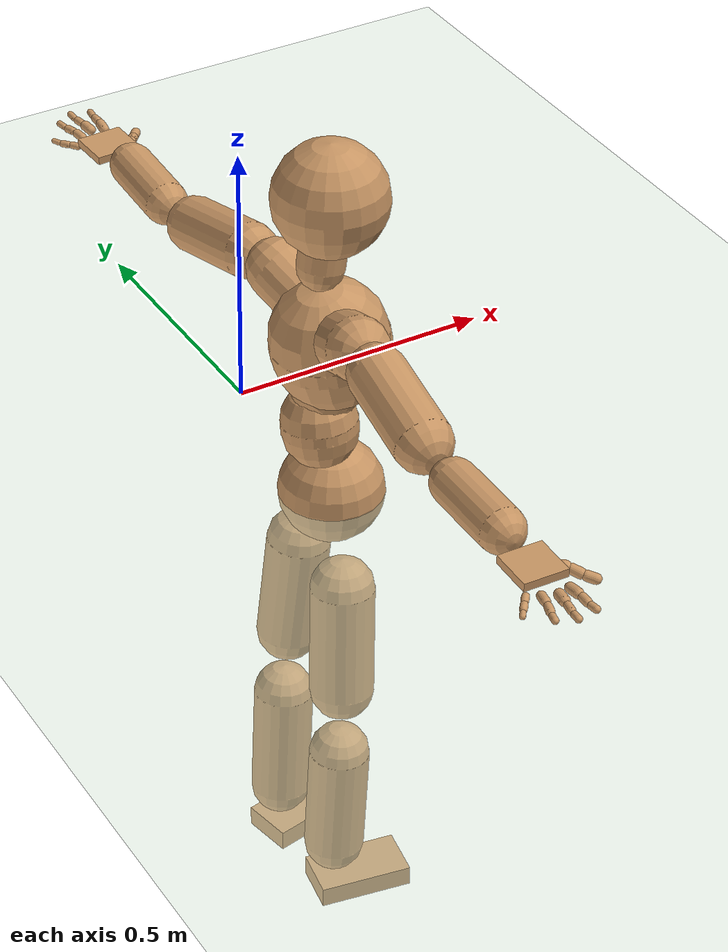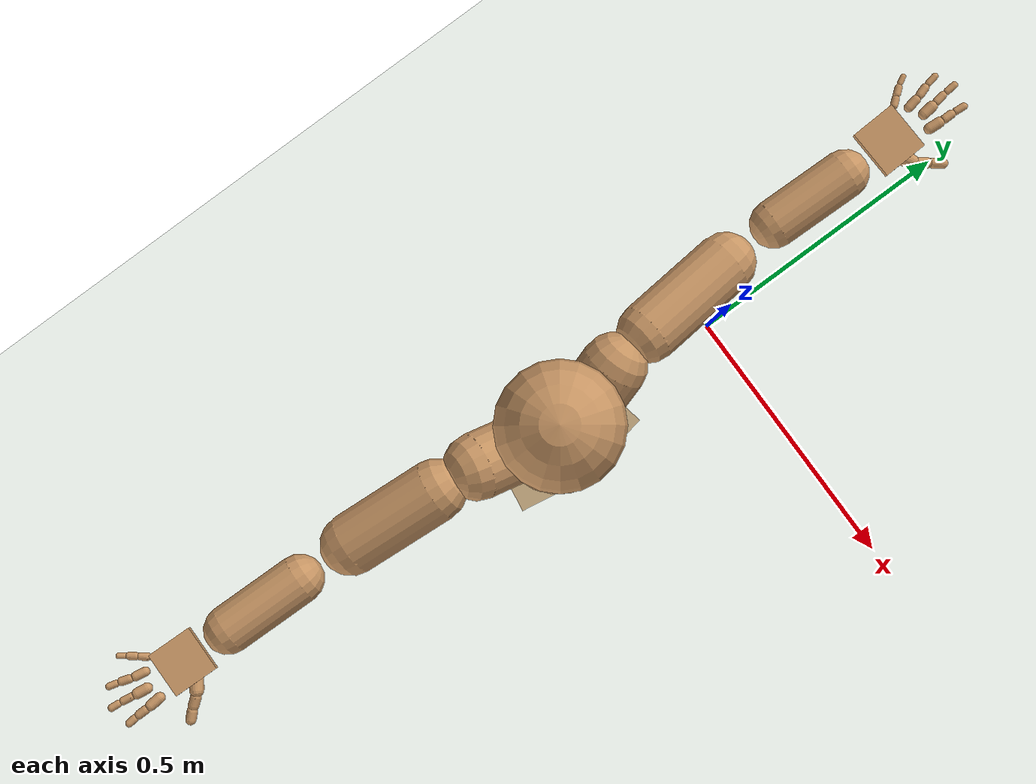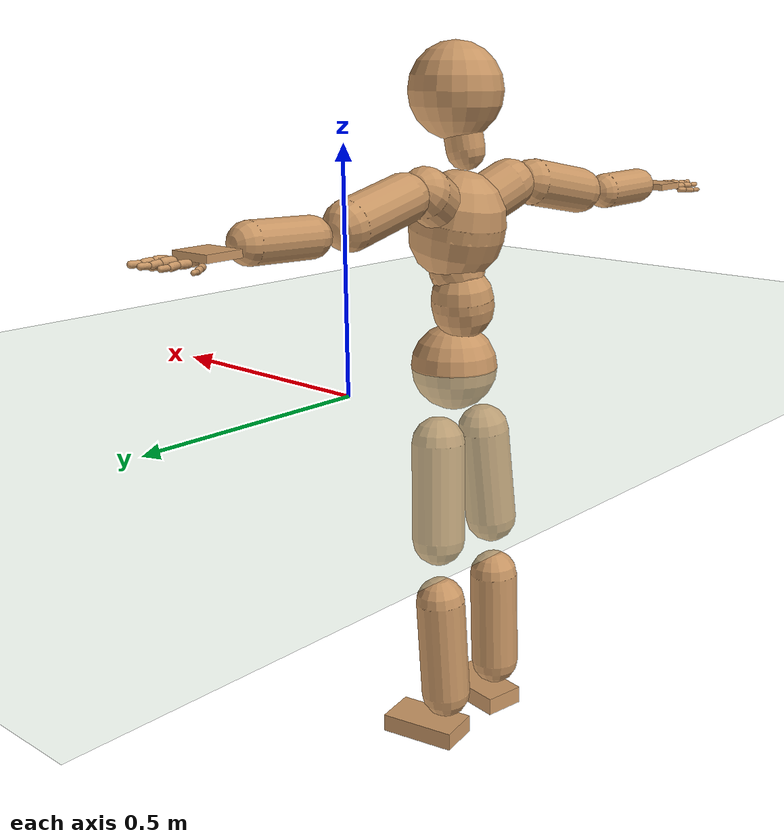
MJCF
<mujoco model="humanoid">
  <compiler coordinate="local" angle="radian"/>
  <default>
    <joint damping="0.0" armature="0.01" stiffness="0.0" limited="true"/>
    <geom conaffinity="1" condim="3" contype="7" margin="0.001" rgba="0.8 0.6 .4 1"/>
  </default>
  <asset>
    <texture type="skybox" builtin="gradient" rgb1=".4 .5 .6" rgb2="0 0 0" width="100" height="100"/>
    <texture builtin="flat" height="1278" mark="cross" markrgb="1 1 1" name="texgeom" random="0.01" rgb1="0.8 0.6 0.4" rgb2="0.8 0.6 0.4" type="cube" width="127"/>
    <texture builtin="checker" height="100" name="texplane" rgb1="0 0 0" rgb2="0.8 0.8 0.8" type="2d" width="100"/>
    <material name="MatPlane" reflectance="0.5" shininess="1" specular="1" texrepeat="60 60" texture="texplane"/>
    <material name="geom" texture="texgeom" texuniform="true"/>
  </asset>
  <worldbody>
    <light cutoff="100" diffuse="1 1 1" dir="-0 0 -1.3" directional="true" exponent="1" pos="0 0 1.3" specular=".1 .1 .1"/>
    <geom conaffinity="1" condim="3" name="floor" pos="0 0 0" rgba="0.8 0.9 0.8 1" size="100 100 .2" type="plane" material="MatPlane"/>
    <body name="Pelvis" pos="0.0006 -0.3273 -0.0001">
      <freejoint name="Pelvis"/>
      <geom type="sphere" contype="1" conaffinity="1" density="500" size="0.0959" pos="0.0000 0.0000 0.0000" name="Pelvis"/>
      <body name="L_Hip" pos="-0.0169 0.0726 -0.0832">
        <joint name="L_Hip_x" type="hinge" pos="0 0 0" axis="1 0 0" stiffness="800" damping="80" armature="0.02" range="-180.0000 180.0000"/>
        <joint name="L_Hip_y" type="hinge" pos="0 0 0" axis="0 1 0" stiffness="800" damping="80" armature="0.02" range="-180.0000 180.0000"/>
        <joint name="L_Hip_z" type="hinge" pos="0 0 0" axis="0 0 1" stiffness="800" damping="80" armature="0.02" range="-180.0000 180.0000"/>
        <geom type="capsule" contype="1" conaffinity="1" density="500" fromto="-0.0046 0.0052 -0.0724 -0.0184 0.0210 -0.2898" size="0.0588" name="L_Hip"/>
        <body name="L_Knee" pos="-0.023 0.0262 -0.3622">
          <joint name="L_Knee_x" type="hinge" pos="0 0 0" axis="1 0 0" stiffness="800" damping="80" armature="0.02" range="-180.0000 180.0000"/>
          <joint name="L_Knee_y" type="hinge" pos="0 0 0" axis="0 1 0" stiffness="800" damping="80" armature="0.02" range="-180.0000 180.0000"/>
          <joint name="L_Knee_z" type="hinge" pos="0 0 0" axis="0 0 1" stiffness="800" damping="80" armature="0.02" range="-180.0000 180.0000"/>
          <geom type="capsule" contype="1" conaffinity="1" density="500" fromto="-0.0036 -0.0019 -0.0755 -0.0146 -0.0075 -0.3019" size="0.0554" name="L_Knee"/>
          <body name="L_Ankle" pos="-0.0182 -0.0093 -0.3774">
            <joint name="L_Ankle_x" type="hinge" pos="0 0 0" axis="1 0 0" stiffness="800" damping="80" armature="0.02" range="-180.0000 180.0000"/>
            <joint name="L_Ankle_y" type="hinge" pos="0 0 0" axis="0 1 0" stiffness="800" damping="80" armature="0.02" range="-180.0000 180.0000"/>
            <joint name="L_Ankle_z" type="hinge" pos="0 0 0" axis="0 0 1" stiffness="800" damping="80" armature="0.02" range="-180.0000 180.0000"/>
            <geom type="box" contype="1" conaffinity="1" density="500" pos="0.0544 0.0106 -0.0219" size="0.0875 0.0477 0.0204" quat="0.9954 0.0000 0.0000 0.0961" name="L_Ankle"/>
            <body name="L_Toe" pos="0.1088 0.0212 -0.0437">
              <joint name="L_Toe_x" type="hinge" pos="0 0 0" axis="1 0 0" stiffness="500" damping="50" armature="0.02" range="-180.0000 180.0000"/>
              <joint name="L_Toe_y" type="hinge" pos="0 0 0" axis="0 1 0" stiffness="500" damping="50" armature="0.02" range="-180.0000 180.0000"/>
              <joint name="L_Toe_z" type="hinge" pos="0 0 0" axis="0 0 1" stiffness="500" damping="50" armature="0.02" range="-180.0000 180.0000"/>
              <geom type="box" contype="1" conaffinity="1" density="500" pos="0.0000 0.0000 0.0219" size="0.0009 0.0024 0.001" quat="0.9947 0.0000 0.0000 0.1030" name="L_Toe"/>
            </body>
          </body>
        </body>
      </body>
      <body name="R_Hip" pos="-0.018 -0.0719 -0.0898">
        <joint name="R_Hip_x" type="hinge" pos="0 0 0" axis="1 0 0" stiffness="800" damping="80" armature="0.02" range="-180.0000 180.0000"/>
        <joint name="R_Hip_y" type="hinge" pos="0 0 0" axis="0 1 0" stiffness="800" damping="80" armature="0.02" range="-180.0000 180.0000"/>
        <joint name="R_Hip_z" type="hinge" pos="0 0 0" axis="0 0 1" stiffness="800" damping="80" armature="0.02" range="-180.0000 180.0000"/>
        <geom type="capsule" contype="1" conaffinity="1" density="500" fromto="-0.0034 -0.0061 -0.0716 -0.0137 -0.0242 -0.2863" size="0.0586" name="R_Hip"/>
        <body name="R_Knee" pos="-0.0171 -0.0303 -0.3578">
          <joint name="R_Knee_x" type="hinge" pos="0 0 0" axis="1 0 0" stiffness="800" damping="80" armature="0.02" range="-180.0000 180.0000"/>
          <joint name="R_Knee_y" type="hinge" pos="0 0 0" axis="0 1 0" stiffness="800" damping="80" armature="0.02" range="-180.0000 180.0000"/>
          <joint name="R_Knee_z" type="hinge" pos="0 0 0" axis="0 0 1" stiffness="800" damping="80" armature="0.02" range="-180.0000 180.0000"/>
          <geom type="capsule" contype="1" conaffinity="1" density="500" fromto="-0.0028 0.0009 -0.0738 -0.0114 0.0036 -0.2951" size="0.0555" name="R_Knee"/>
          <body name="R_Ankle" pos="-0.0142 0.0045 -0.3689">
            <joint name="R_Ankle_x" type="hinge" pos="0 0 0" axis="1 0 0" stiffness="800" damping="80" armature="0.02" range="-180.0000 180.0000"/>
            <joint name="R_Ankle_y" type="hinge" pos="0 0 0" axis="0 1 0" stiffness="800" damping="80" armature="0.02" range="-180.0000 180.0000"/>
            <joint name="R_Ankle_z" type="hinge" pos="0 0 0" axis="0 0 1" stiffness="800" damping="80" armature="0.02" range="-180.0000 180.0000"/>
            <geom type="box" contype="1" conaffinity="1" density="500" pos="0.0512 -0.0084 -0.0235" size="0.0875 0.0477 0.0204" quat="0.9967 0.0000 0.0000 -0.0814" name="R_Ankle"/>
            <body name="R_Toe" pos="0.1024 -0.0168 -0.047">
              <joint name="R_Toe_x" type="hinge" pos="0 0 0" axis="1 0 0" stiffness="500" damping="50" armature="0.02" range="-180.0000 180.0000"/>
              <joint name="R_Toe_y" type="hinge" pos="0 0 0" axis="0 1 0" stiffness="500" damping="50" armature="0.02" range="-180.0000 180.0000"/>
              <joint name="R_Toe_z" type="hinge" pos="0 0 0" axis="0 0 1" stiffness="500" damping="50" armature="0.02" range="-180.0000 180.0000"/>
              <geom type="box" contype="1" conaffinity="1" density="500" pos="0.0000 0.0000 0.0235" size="0.0009 0.0024 0.001" quat="0.9975 0.0000 0.0000 -0.0705" name="R_Toe"/>
            </body>
          </body>
        </body>
      </body>
      <body name="Torso" pos="-0.0225 -0.0055 0.0943">
        <joint name="Torso_x" type="hinge" pos="0 0 0" axis="1 0 0" stiffness="1000" damping="100" armature="0.02" range="-180.0000 180.0000"/>
        <joint name="Torso_y" type="hinge" pos="0 0 0" axis="0 1 0" stiffness="1000" damping="100" armature="0.02" range="-180.0000 180.0000"/>
        <joint name="Torso_z" type="hinge" pos="0 0 0" axis="0 0 1" stiffness="1000" damping="100" armature="0.02" range="-180.0000 180.0000"/>
        <geom type="capsule" contype="1" conaffinity="1" density="500" fromto="-0.0021 0.0070 0.0610 -0.0014 0.0047 0.0407" size="0.0688" name="Torso"/>
        <body name="Spine" pos="-0.0035 0.0117 0.1017">
          <joint name="Spine_x" type="hinge" pos="0 0 0" axis="1 0 0" stiffness="1000" damping="100" armature="0.02" range="-180.0000 180.0000"/>
          <joint name="Spine_y" type="hinge" pos="0 0 0" axis="0 1 0" stiffness="1000" damping="100" armature="0.02" range="-180.0000 180.0000"/>
          <joint name="Spine_z" type="hinge" pos="0 0 0" axis="0 0 1" stiffness="1000" damping="100" armature="0.02" range="-180.0000 180.0000"/>
          <geom type="capsule" contype="1" conaffinity="1" density="500" fromto="0.0207 -0.0042 0.0253 0.0138 -0.0028 0.0168" size="0.0598" name="Spine"/>
          <body name="Chest" pos="0.0345 -0.007 0.0421">
            <joint name="Chest_x" type="hinge" pos="0 0 0" axis="1 0 0" stiffness="1000" damping="100" armature="0.02" range="-180.0000 180.0000"/>
            <joint name="Chest_y" type="hinge" pos="0 0 0" axis="0 1 0" stiffness="1000" damping="100" armature="0.02" range="-180.0000 180.0000"/>
            <joint name="Chest_z" type="hinge" pos="0 0 0" axis="0 0 1" stiffness="1000" damping="100" armature="0.02" range="-180.0000 180.0000"/>
            <geom type="capsule" contype="1" conaffinity="1" density="500" fromto="-0.0171 -0.0017 0.0861 -0.0114 -0.0011 0.0574" size="0.1051" name="Chest"/>
            <body name="Neck" pos="-0.041 -0.0059 0.2007">
              <joint name="Neck_x" type="hinge" pos="0 0 0" axis="1 0 0" stiffness="500" damping="50" armature="0.02" range="-180.0000 180.0000"/>
              <joint name="Neck_y" type="hinge" pos="0 0 0" axis="0 1 0" stiffness="500" damping="50" armature="0.02" range="-180.0000 180.0000"/>
              <joint name="Neck_z" type="hinge" pos="0 0 0" axis="0 0 1" stiffness="500" damping="50" armature="0.02" range="-180.0000 180.0000"/>
              <geom type="capsule" contype="1" conaffinity="1" density="500" fromto="0.0055 0.0018 0.0303 0.0220 0.0072 0.1213" size="0.0418" name="Neck"/>
              <body name="Head" pos="0.0275 0.0089 0.1516">
                <joint name="Head_x" type="hinge" pos="0 0 0" axis="1 0 0" stiffness="500" damping="50" armature="0.02" range="-180.0000 180.0000"/>
                <joint name="Head_y" type="hinge" pos="0 0 0" axis="0 1 0" stiffness="500" damping="50" armature="0.02" range="-180.0000 180.0000"/>
                <joint name="Head_z" type="hinge" pos="0 0 0" axis="0 0 1" stiffness="500" damping="50" armature="0.02" range="-180.0000 180.0000"/>
                <geom type="sphere" contype="1" conaffinity="1" density="500" size="0.1016" pos="0.0000 0.0000 0.0000" name="Head"/>
              </body>
            </body>
            <body name="L_Thorax" pos="-0.0186 0.0552 0.1172">
              <joint name="L_Thorax_x" type="hinge" pos="0 0 0" axis="1 0 0" stiffness="500" damping="50" armature="0.02" range="-180.0000 180.0000"/>
              <joint name="L_Thorax_y" type="hinge" pos="0 0 0" axis="0 1 0" stiffness="500" damping="50" armature="0.02" range="-180.0000 180.0000"/>
              <joint name="L_Thorax_z" type="hinge" pos="0 0 0" axis="0 0 1" stiffness="500" damping="50" armature="0.02" range="-180.0000 180.0000"/>
              <geom type="capsule" contype="1" conaffinity="1" density="500" fromto="-0.0059 0.0192 0.0091 -0.0238 0.0768 0.0366" size="0.0547" name="L_Thorax"/>
              <body name="L_Shoulder" pos="-0.0297 0.096 0.0457">
                <joint name="L_Shoulder_x" type="hinge" pos="0 0 0" axis="1 0 0" stiffness="500" damping="50" armature="0.02" range="-180.0000 180.0000"/>
                <joint name="L_Shoulder_y" type="hinge" pos="0 0 0" axis="0 1 0" stiffness="500" damping="50" armature="0.02" range="-180.0000 180.0000"/>
                <joint name="L_Shoulder_z" type="hinge" pos="0 0 0" axis="0 0 1" stiffness="500" damping="50" armature="0.02" range="-180.0000 180.0000"/>
                <geom type="capsule" contype="1" conaffinity="1" density="500" fromto="-0.0054 0.0565 -0.0116 -0.0216 0.2261 -0.0462" size="0.0512" name="L_Shoulder"/>
                <body name="L_Elbow" pos="-0.027 0.2826 -0.0578">
                  <joint name="L_Elbow_x" type="hinge" pos="0 0 0" axis="1 0 0" stiffness="500" damping="50" armature="0.02" range="-720.0000 720.0000"/>
                  <joint name="L_Elbow_y" type="hinge" pos="0 0 0" axis="0 1 0" stiffness="500" damping="50" armature="0.02" range="-720.0000 720.0000"/>
                  <joint name="L_Elbow_z" type="hinge" pos="0 0 0" axis="0 0 1" stiffness="500" damping="50" armature="0.02" range="-720.0000 720.0000"/>
                  <geom type="capsule" contype="1" conaffinity="1" density="500" fromto="0.0010 0.0469 0.0017 0.0042 0.1875 0.0067" size="0.0405" name="L_Elbow"/>
                  <body name="L_Wrist" pos="0.0052 0.2344 0.0083">
                    <joint name="L_Wrist_x" type="hinge" pos="0 0 0" axis="1 0 0" stiffness="300" damping="30" armature="0.02" range="-180.0000 180.0000"/>
                    <joint name="L_Wrist_y" type="hinge" pos="0 0 0" axis="0 1 0" stiffness="300" damping="30" armature="0.02" range="-180.0000 180.0000"/>
                    <joint name="L_Wrist_z" type="hinge" pos="0 0 0" axis="0 0 1" stiffness="300" damping="30" armature="0.02" range="-180.0000 180.0000"/>
                    <geom type="box" contype="1" conaffinity="1" density="500" pos="-0.0020 0.0447 -0.0087" size="0.0395 0.0427 0.0074" quat="0.7225 0.0000 0.0000 -0.6914" name="L_Wrist"/>
                    <body name="L_Index1" pos="0.021 0.1049 -0.0151">
                      <joint name="L_Index1_x" type="hinge" pos="0 0 0" axis="1 0 0" stiffness="100" damping="10" armature="0.02" range="-180.0000 180.0000"/>
                      <joint name="L_Index1_y" type="hinge" pos="0 0 0" axis="0 1 0" stiffness="100" damping="10" armature="0.02" range="-180.0000 180.0000"/>
                      <joint name="L_Index1_z" type="hinge" pos="0 0 0" axis="0 0 1" stiffness="100" damping="10" armature="0.02" range="-180.0000 180.0000"/>
                      <geom type="capsule" contype="1" conaffinity="1" density="500" fromto="0.0005 0.0063 0.0006 0.0020 0.0253 0.0024" size="0.0091" name="L_Index1"/>
                      <body name="L_Index2" pos="0.0026 0.0316 0.003">
                        <joint name="L_Index2_x" type="hinge" pos="0 0 0" axis="1 0 0" stiffness="100" damping="10" armature="0.02" range="-180.0000 180.0000"/>
                        <joint name="L_Index2_y" type="hinge" pos="0 0 0" axis="0 1 0" stiffness="100" damping="10" armature="0.02" range="-180.0000 180.0000"/>
                        <joint name="L_Index2_z" type="hinge" pos="0 0 0" axis="0 0 1" stiffness="100" damping="10" armature="0.02" range="-180.0000 180.0000"/>
                        <geom type="capsule" contype="1" conaffinity="1" density="500" fromto="0.0001 0.0045 -0.0003 0.0002 0.0178 -0.0010" size="0.0075" name="L_Index2"/>
                        <body name="L_Index3" pos="0.0003 0.0223 -0.0013">
                          <joint name="L_Index3_x" type="hinge" pos="0 0 0" axis="1 0 0" stiffness="100" damping="10" armature="0.02" range="-180.0000 180.0000"/>
                          <joint name="L_Index3_y" type="hinge" pos="0 0 0" axis="0 1 0" stiffness="100" damping="10" armature="0.02" range="-180.0000 180.0000"/>
                          <joint name="L_Index3_z" type="hinge" pos="0 0 0" axis="0 0 1" stiffness="100" damping="10" armature="0.02" range="-180.0000 180.0000"/>
                          <geom type="capsule" contype="1" conaffinity="1" density="500" fromto="0.0005 0.0049 0.0001 0.0018 0.0194 0.0006" size="0.0063" name="L_Index3"/>
                        </body>
                      </body>
                    </body>
                    <body name="L_Middle1" pos="-0.0021 0.1122 -0.0127">
                      <joint name="L_Middle1_x" type="hinge" pos="0 0 0" axis="1 0 0" stiffness="100" damping="10" armature="0.02" range="-180.0000 180.0000"/>
                      <joint name="L_Middle1_y" type="hinge" pos="0 0 0" axis="0 1 0" stiffness="100" damping="10" armature="0.02" range="-180.0000 180.0000"/>
                      <joint name="L_Middle1_z" type="hinge" pos="0 0 0" axis="0 0 1" stiffness="100" damping="10" armature="0.02" range="-180.0000 180.0000"/>
                      <geom type="capsule" contype="1" conaffinity="1" density="500" fromto="-0.0008 0.0060 0.0003 -0.0032 0.0241 0.0012" size="0.0093" name="L_Middle1"/>
                      <body name="L_Middle2" pos="-0.004 0.0302 0.0015">
                        <joint name="L_Middle2_x" type="hinge" pos="0 0 0" axis="1 0 0" stiffness="100" damping="10" armature="0.02" range="-180.0000 180.0000"/>
                        <joint name="L_Middle2_y" type="hinge" pos="0 0 0" axis="0 1 0" stiffness="100" damping="10" armature="0.02" range="-180.0000 180.0000"/>
                        <joint name="L_Middle2_z" type="hinge" pos="0 0 0" axis="0 0 1" stiffness="100" damping="10" armature="0.02" range="-180.0000 180.0000"/>
                        <geom type="capsule" contype="1" conaffinity="1" density="500" fromto="-0.0008 0.0047 -0.0001 -0.0031 0.0187 -0.0005" size="0.0069" name="L_Middle2"/>
                        <body name="L_Middle3" pos="-0.0038 0.0234 -0.0007">
                          <joint name="L_Middle3_x" type="hinge" pos="0 0 0" axis="1 0 0" stiffness="100" damping="10" armature="0.02" range="-180.0000 180.0000"/>
                          <joint name="L_Middle3_y" type="hinge" pos="0 0 0" axis="0 1 0" stiffness="100" damping="10" armature="0.02" range="-180.0000 180.0000"/>
                          <joint name="L_Middle3_z" type="hinge" pos="0 0 0" axis="0 0 1" stiffness="100" damping="10" armature="0.02" range="-180.0000 180.0000"/>
                          <geom type="capsule" contype="1" conaffinity="1" density="500" fromto="-0.0004 0.0051 0.0003 -0.0015 0.0203 0.0011" size="0.006" name="L_Middle3"/>
                        </body>
                      </body>
                    </body>
                    <body name="L_Pinky1" pos="-0.0413 0.0864 -0.0206">
                      <joint name="L_Pinky1_x" type="hinge" pos="0 0 0" axis="1 0 0" stiffness="100" damping="10" armature="0.02" range="-180.0000 180.0000"/>
                      <joint name="L_Pinky1_y" type="hinge" pos="0 0 0" axis="0 1 0" stiffness="100" damping="10" armature="0.02" range="-180.0000 180.0000"/>
                      <joint name="L_Pinky1_z" type="hinge" pos="0 0 0" axis="0 0 1" stiffness="100" damping="10" armature="0.02" range="-180.0000 180.0000"/>
                      <geom type="capsule" contype="1" conaffinity="1" density="500" fromto="-0.0024 0.0030 -0.0001 -0.0097 0.0119 -0.0004" size="0.0066" name="L_Pinky1"/>
                      <body name="L_Pinky2" pos="-0.0121 0.0149 -0.0005">
                        <joint name="L_Pinky2_x" type="hinge" pos="0 0 0" axis="1 0 0" stiffness="100" damping="10" armature="0.02" range="-180.0000 180.0000"/>
                        <joint name="L_Pinky2_y" type="hinge" pos="0 0 0" axis="0 1 0" stiffness="100" damping="10" armature="0.02" range="-180.0000 180.0000"/>
                        <joint name="L_Pinky2_z" type="hinge" pos="0 0 0" axis="0 0 1" stiffness="100" damping="10" armature="0.02" range="-180.0000 180.0000"/>
                        <geom type="capsule" contype="1" conaffinity="1" density="500" fromto="-0.0024 0.0030 -0.0002 -0.0094 0.0120 -0.0008" size="0.0064" name="L_Pinky2"/>
                        <body name="L_Pinky3" pos="-0.0118 0.015 -0.001">
                          <joint name="L_Pinky3_x" type="hinge" pos="0 0 0" axis="1 0 0" stiffness="100" damping="10" armature="0.02" range="-180.0000 180.0000"/>
                          <joint name="L_Pinky3_y" type="hinge" pos="0 0 0" axis="0 1 0" stiffness="100" damping="10" armature="0.02" range="-180.0000 180.0000"/>
                          <joint name="L_Pinky3_z" type="hinge" pos="0 0 0" axis="0 0 1" stiffness="100" damping="10" armature="0.02" range="-180.0000 180.0000"/>
                          <geom type="capsule" contype="1" conaffinity="1" density="500" fromto="-0.0020 0.0034 0.0002 -0.0078 0.0136 0.0008" size="0.0049" name="L_Pinky3"/>
                        </body>
                      </body>
                    </body>
                    <body name="L_Ring1" pos="-0.0253 0.1 -0.0154">
                      <joint name="L_Ring1_x" type="hinge" pos="0 0 0" axis="1 0 0" stiffness="100" damping="10" armature="0.02" range="-180.0000 180.0000"/>
                      <joint name="L_Ring1_y" type="hinge" pos="0 0 0" axis="0 1 0" stiffness="100" damping="10" armature="0.02" range="-180.0000 180.0000"/>
                      <joint name="L_Ring1_z" type="hinge" pos="0 0 0" axis="0 0 1" stiffness="100" damping="10" armature="0.02" range="-180.0000 180.0000"/>
                      <geom type="capsule" contype="1" conaffinity="1" density="500" fromto="-0.0011 0.0055 0.0004 -0.0043 0.0222 0.0015" size="0.008" name="L_Ring1"/>
                      <body name="L_Ring2" pos="-0.0054 0.0277 0.0019">
                        <joint name="L_Ring2_x" type="hinge" pos="0 0 0" axis="1 0 0" stiffness="100" damping="10" armature="0.02" range="-180.0000 180.0000"/>
                        <joint name="L_Ring2_y" type="hinge" pos="0 0 0" axis="0 1 0" stiffness="100" damping="10" armature="0.02" range="-180.0000 180.0000"/>
                        <joint name="L_Ring2_z" type="hinge" pos="0 0 0" axis="0 0 1" stiffness="100" damping="10" armature="0.02" range="-180.0000 180.0000"/>
                        <geom type="capsule" contype="1" conaffinity="1" density="500" fromto="-0.0014 0.0045 -0.0002 -0.0057 0.0180 -0.0007" size="0.0073" name="L_Ring2"/>
                        <body name="L_Ring3" pos="-0.0072 0.0225 -0.0009">
                          <joint name="L_Ring3_x" type="hinge" pos="0 0 0" axis="1 0 0" stiffness="100" damping="10" armature="0.02" range="-180.0000 180.0000"/>
                          <joint name="L_Ring3_y" type="hinge" pos="0 0 0" axis="0 1 0" stiffness="100" damping="10" armature="0.02" range="-180.0000 180.0000"/>
                          <joint name="L_Ring3_z" type="hinge" pos="0 0 0" axis="0 0 1" stiffness="100" damping="10" armature="0.02" range="-180.0000 180.0000"/>
                          <geom type="capsule" contype="1" conaffinity="1" density="500" fromto="-0.0010 0.0049 0.0002 -0.0041 0.0196 0.0009" size="0.0057" name="L_Ring3"/>
                        </body>
                      </body>
                    </body>
                    <body name="L_Thumb1" pos="0.028 0.044 -0.0229">
                      <joint name="L_Thumb1_x" type="hinge" pos="0 0 0" axis="1 0 0" stiffness="100" damping="10" armature="0.02" range="-180.0000 180.0000"/>
                      <joint name="L_Thumb1_y" type="hinge" pos="0 0 0" axis="0 1 0" stiffness="100" damping="10" armature="0.02" range="-180.0000 180.0000"/>
                      <joint name="L_Thumb1_z" type="hinge" pos="0 0 0" axis="0 0 1" stiffness="100" damping="10" armature="0.02" range="-180.0000 180.0000"/>
                      <geom type="capsule" contype="1" conaffinity="1" density="500" fromto="0.0048 0.0034 0.0002 0.0193 0.0138 0.0006" size="0.0119" name="L_Thumb1"/>
                      <body name="L_Thumb2" pos="0.0242 0.0172 0.0008">
                        <joint name="L_Thumb2_x" type="hinge" pos="0 0 0" axis="1 0 0" stiffness="100" damping="10" armature="0.02" range="-180.0000 180.0000"/>
                        <joint name="L_Thumb2_y" type="hinge" pos="0 0 0" axis="0 1 0" stiffness="100" damping="10" armature="0.02" range="-180.0000 180.0000"/>
                        <joint name="L_Thumb2_z" type="hinge" pos="0 0 0" axis="0 0 1" stiffness="100" damping="10" armature="0.02" range="-180.0000 180.0000"/>
                        <geom type="capsule" contype="1" conaffinity="1" density="500" fromto="0.0029 0.0040 -0.0012 0.0117 0.0161 -0.0049" size="0.0093" name="L_Thumb2"/>
                        <body name="L_Thumb3" pos="0.0146 0.0201 -0.0061">
                          <joint name="L_Thumb3_x" type="hinge" pos="0 0 0" axis="1 0 0" stiffness="100" damping="10" armature="0.02" range="-180.0000 180.0000"/>
                          <joint name="L_Thumb3_y" type="hinge" pos="0 0 0" axis="0 1 0" stiffness="100" damping="10" armature="0.02" range="-180.0000 180.0000"/>
                          <joint name="L_Thumb3_z" type="hinge" pos="0 0 0" axis="0 0 1" stiffness="100" damping="10" armature="0.02" range="-180.0000 180.0000"/>
                          <geom type="capsule" contype="1" conaffinity="1" density="500" fromto="0.0033 0.0044 -0.0008 0.0133 0.0177 -0.0033" size="0.0088" name="L_Thumb3"/>
                        </body>
                      </body>
                    </body>
                  </body>
                </body>
              </body>
            </body>
            <body name="R_Thorax" pos="-0.0257 -0.0577 0.1126">
              <joint name="R_Thorax_x" type="hinge" pos="0 0 0" axis="1 0 0" stiffness="500" damping="50" armature="0.02" range="-180.0000 180.0000"/>
              <joint name="R_Thorax_y" type="hinge" pos="0 0 0" axis="0 1 0" stiffness="500" damping="50" armature="0.02" range="-180.0000 180.0000"/>
              <joint name="R_Thorax_z" type="hinge" pos="0 0 0" axis="0 0 1" stiffness="500" damping="50" armature="0.02" range="-180.0000 180.0000"/>
              <geom type="capsule" contype="1" conaffinity="1" density="500" fromto="-0.0044 -0.0208 0.0096 -0.0177 -0.0833 0.0383" size="0.0559" name="R_Thorax"/>
              <body name="R_Shoulder" pos="-0.0221 -0.1042 0.0479">
                <joint name="R_Shoulder_x" type="hinge" pos="0 0 0" axis="1 0 0" stiffness="500" damping="50" armature="0.02" range="-180.0000 180.0000"/>
                <joint name="R_Shoulder_y" type="hinge" pos="0 0 0" axis="0 1 0" stiffness="500" damping="50" armature="0.02" range="-180.0000 180.0000"/>
                <joint name="R_Shoulder_z" type="hinge" pos="0 0 0" axis="0 0 1" stiffness="500" damping="50" armature="0.02" range="-180.0000 180.0000"/>
                <geom type="capsule" contype="1" conaffinity="1" density="500" fromto="-0.0040 -0.0544 -0.0103 -0.0159 -0.2177 -0.0414" size="0.0516" name="R_Shoulder"/>
                <body name="R_Elbow" pos="-0.0199 -0.2721 -0.0517">
                  <joint name="R_Elbow_x" type="hinge" pos="0 0 0" axis="1 0 0" stiffness="500" damping="50" armature="0.02" range="-720.0000 720.0000"/>
                  <joint name="R_Elbow_y" type="hinge" pos="0 0 0" axis="0 1 0" stiffness="500" damping="50" armature="0.02" range="-720.0000 720.0000"/>
                  <joint name="R_Elbow_z" type="hinge" pos="0 0 0" axis="0 0 1" stiffness="500" damping="50" armature="0.02" range="-720.0000 720.0000"/>
                  <geom type="capsule" contype="1" conaffinity="1" density="500" fromto="-0.0008 -0.0470 0.0008 -0.0033 -0.1881 0.0031" size="0.0407" name="R_Elbow"/>
                  <body name="R_Wrist" pos="-0.0041 -0.2351 0.0038">
                    <joint name="R_Wrist_x" type="hinge" pos="0 0 0" axis="1 0 0" stiffness="300" damping="30" armature="0.02" range="-180.0000 180.0000"/>
                    <joint name="R_Wrist_y" type="hinge" pos="0 0 0" axis="0 1 0" stiffness="300" damping="30" armature="0.02" range="-180.0000 180.0000"/>
                    <joint name="R_Wrist_z" type="hinge" pos="0 0 0" axis="0 0 1" stiffness="300" damping="30" armature="0.02" range="-180.0000 180.0000"/>
                    <geom type="box" contype="1" conaffinity="1" density="500" pos="-0.0012 -0.0441 -0.0082" size="0.0395 0.0399 0.0076" quat="0.7165 0.0000 0.0000 0.6976" name="R_Wrist"/>
                    <body name="R_Index1" pos="0.0226 -0.1036 -0.0142">
                      <joint name="R_Index1_x" type="hinge" pos="0 0 0" axis="1 0 0" stiffness="100" damping="10" armature="0.02" range="-180.0000 180.0000"/>
                      <joint name="R_Index1_y" type="hinge" pos="0 0 0" axis="0 1 0" stiffness="100" damping="10" armature="0.02" range="-180.0000 180.0000"/>
                      <joint name="R_Index1_z" type="hinge" pos="0 0 0" axis="0 0 1" stiffness="100" damping="10" armature="0.02" range="-180.0000 180.0000"/>
                      <geom type="capsule" contype="1" conaffinity="1" density="500" fromto="0.0005 -0.0063 0.0006 0.0020 -0.0253 0.0024" size="0.0091" name="R_Index1"/>
                      <body name="R_Index2" pos="0.0026 -0.0316 0.003">
                        <joint name="R_Index2_x" type="hinge" pos="0 0 0" axis="1 0 0" stiffness="100" damping="10" armature="0.02" range="-180.0000 180.0000"/>
                        <joint name="R_Index2_y" type="hinge" pos="0 0 0" axis="0 1 0" stiffness="100" damping="10" armature="0.02" range="-180.0000 180.0000"/>
                        <joint name="R_Index2_z" type="hinge" pos="0 0 0" axis="0 0 1" stiffness="100" damping="10" armature="0.02" range="-180.0000 180.0000"/>
                        <geom type="capsule" contype="1" conaffinity="1" density="500" fromto="0.0001 -0.0045 -0.0003 0.0002 -0.0178 -0.0010" size="0.0075" name="R_Index2"/>
                        <body name="R_Index3" pos="0.0003 -0.0223 -0.0013">
                          <joint name="R_Index3_x" type="hinge" pos="0 0 0" axis="1 0 0" stiffness="100" damping="10" armature="0.02" range="-180.0000 180.0000"/>
                          <joint name="R_Index3_y" type="hinge" pos="0 0 0" axis="0 1 0" stiffness="100" damping="10" armature="0.02" range="-180.0000 180.0000"/>
                          <joint name="R_Index3_z" type="hinge" pos="0 0 0" axis="0 0 1" stiffness="100" damping="10" armature="0.02" range="-180.0000 180.0000"/>
                          <geom type="capsule" contype="1" conaffinity="1" density="500" fromto="0.0005 -0.0041 0.0001 0.0018 -0.0162 0.0006" size="0.0066" name="R_Index3"/>
                        </body>
                      </body>
                    </body>
                    <body name="R_Middle1" pos="-0.0006 -0.1109 -0.0118">
                      <joint name="R_Middle1_x" type="hinge" pos="0 0 0" axis="1 0 0" stiffness="100" damping="10" armature="0.02" range="-180.0000 180.0000"/>
                      <joint name="R_Middle1_y" type="hinge" pos="0 0 0" axis="0 1 0" stiffness="100" damping="10" armature="0.02" range="-180.0000 180.0000"/>
                      <joint name="R_Middle1_z" type="hinge" pos="0 0 0" axis="0 0 1" stiffness="100" damping="10" armature="0.02" range="-180.0000 180.0000"/>
                      <geom type="capsule" contype="1" conaffinity="1" density="500" fromto="-0.0008 -0.0060 0.0003 -0.0032 -0.0241 0.0012" size="0.0093" name="R_Middle1"/>
                      <body name="R_Middle2" pos="-0.004 -0.0302 0.0015">
                        <joint name="R_Middle2_x" type="hinge" pos="0 0 0" axis="1 0 0" stiffness="100" damping="10" armature="0.02" range="-180.0000 180.0000"/>
                        <joint name="R_Middle2_y" type="hinge" pos="0 0 0" axis="0 1 0" stiffness="100" damping="10" armature="0.02" range="-180.0000 180.0000"/>
                        <joint name="R_Middle2_z" type="hinge" pos="0 0 0" axis="0 0 1" stiffness="100" damping="10" armature="0.02" range="-180.0000 180.0000"/>
                        <geom type="capsule" contype="1" conaffinity="1" density="500" fromto="-0.0008 -0.0047 -0.0001 -0.0031 -0.0187 -0.0005" size="0.0069" name="R_Middle2"/>
                        <body name="R_Middle3" pos="-0.0038 -0.0234 -0.0007">
                          <joint name="R_Middle3_x" type="hinge" pos="0 0 0" axis="1 0 0" stiffness="100" damping="10" armature="0.02" range="-180.0000 180.0000"/>
                          <joint name="R_Middle3_y" type="hinge" pos="0 0 0" axis="0 1 0" stiffness="100" damping="10" armature="0.02" range="-180.0000 180.0000"/>
                          <joint name="R_Middle3_z" type="hinge" pos="0 0 0" axis="0 0 1" stiffness="100" damping="10" armature="0.02" range="-180.0000 180.0000"/>
                          <geom type="capsule" contype="1" conaffinity="1" density="500" fromto="-0.0004 -0.0043 0.0003 -0.0015 -0.0171 0.0011" size="0.0063" name="R_Middle3"/>
                        </body>
                      </body>
                    </body>
                    <body name="R_Pinky1" pos="-0.0397 -0.0851 -0.0198">
                      <joint name="R_Pinky1_x" type="hinge" pos="0 0 0" axis="1 0 0" stiffness="100" damping="10" armature="0.02" range="-180.0000 180.0000"/>
                      <joint name="R_Pinky1_y" type="hinge" pos="0 0 0" axis="0 1 0" stiffness="100" damping="10" armature="0.02" range="-180.0000 180.0000"/>
                      <joint name="R_Pinky1_z" type="hinge" pos="0 0 0" axis="0 0 1" stiffness="100" damping="10" armature="0.02" range="-180.0000 180.0000"/>
                      <geom type="capsule" contype="1" conaffinity="1" density="500" fromto="-0.0024 -0.0030 -0.0001 -0.0097 -0.0119 -0.0004" size="0.0066" name="R_Pinky1"/>
                      <body name="R_Pinky2" pos="-0.0121 -0.0149 -0.0005">
                        <joint name="R_Pinky2_x" type="hinge" pos="0 0 0" axis="1 0 0" stiffness="100" damping="10" armature="0.02" range="-180.0000 180.0000"/>
                        <joint name="R_Pinky2_y" type="hinge" pos="0 0 0" axis="0 1 0" stiffness="100" damping="10" armature="0.02" range="-180.0000 180.0000"/>
                        <joint name="R_Pinky2_z" type="hinge" pos="0 0 0" axis="0 0 1" stiffness="100" damping="10" armature="0.02" range="-180.0000 180.0000"/>
                        <geom type="capsule" contype="1" conaffinity="1" density="500" fromto="-0.0024 -0.0030 -0.0002 -0.0094 -0.0120 -0.0008" size="0.0064" name="R_Pinky2"/>
                        <body name="R_Pinky3" pos="-0.0118 -0.015 -0.001">
                          <joint name="R_Pinky3_x" type="hinge" pos="0 0 0" axis="1 0 0" stiffness="100" damping="10" armature="0.02" range="-180.0000 180.0000"/>
                          <joint name="R_Pinky3_y" type="hinge" pos="0 0 0" axis="0 1 0" stiffness="100" damping="10" armature="0.02" range="-180.0000 180.0000"/>
                          <joint name="R_Pinky3_z" type="hinge" pos="0 0 0" axis="0 0 1" stiffness="100" damping="10" armature="0.02" range="-180.0000 180.0000"/>
                          <geom type="capsule" contype="1" conaffinity="1" density="500" fromto="-0.0020 -0.0026 0.0002 -0.0078 -0.0104 0.0008" size="0.0051" name="R_Pinky3"/>
                        </body>
                      </body>
                    </body>
                    <body name="R_Ring1" pos="-0.0237 -0.0987 -0.0145">
                      <joint name="R_Ring1_x" type="hinge" pos="0 0 0" axis="1 0 0" stiffness="100" damping="10" armature="0.02" range="-180.0000 180.0000"/>
                      <joint name="R_Ring1_y" type="hinge" pos="0 0 0" axis="0 1 0" stiffness="100" damping="10" armature="0.02" range="-180.0000 180.0000"/>
                      <joint name="R_Ring1_z" type="hinge" pos="0 0 0" axis="0 0 1" stiffness="100" damping="10" armature="0.02" range="-180.0000 180.0000"/>
                      <geom type="capsule" contype="1" conaffinity="1" density="500" fromto="-0.0011 -0.0055 0.0004 -0.0043 -0.0222 0.0015" size="0.008" name="R_Ring1"/>
                      <body name="R_Ring2" pos="-0.0054 -0.0277 0.0019">
                        <joint name="R_Ring2_x" type="hinge" pos="0 0 0" axis="1 0 0" stiffness="100" damping="10" armature="0.02" range="-180.0000 180.0000"/>
                        <joint name="R_Ring2_y" type="hinge" pos="0 0 0" axis="0 1 0" stiffness="100" damping="10" armature="0.02" range="-180.0000 180.0000"/>
                        <joint name="R_Ring2_z" type="hinge" pos="0 0 0" axis="0 0 1" stiffness="100" damping="10" armature="0.02" range="-180.0000 180.0000"/>
                        <geom type="capsule" contype="1" conaffinity="1" density="500" fromto="-0.0014 -0.0045 -0.0002 -0.0057 -0.0180 -0.0007" size="0.0073" name="R_Ring2"/>
                        <body name="R_Ring3" pos="-0.0072 -0.0225 -0.0009">
                          <joint name="R_Ring3_x" type="hinge" pos="0 0 0" axis="1 0 0" stiffness="100" damping="10" armature="0.02" range="-180.0000 180.0000"/>
                          <joint name="R_Ring3_y" type="hinge" pos="0 0 0" axis="0 1 0" stiffness="100" damping="10" armature="0.02" range="-180.0000 180.0000"/>
                          <joint name="R_Ring3_z" type="hinge" pos="0 0 0" axis="0 0 1" stiffness="100" damping="10" armature="0.02" range="-180.0000 180.0000"/>
                          <geom type="capsule" contype="1" conaffinity="1" density="500" fromto="-0.0010 -0.0041 0.0002 -0.0041 -0.0164 0.0009" size="0.006" name="R_Ring3"/>
                        </body>
                      </body>
                    </body>
                    <body name="R_Thumb1" pos="0.0296 -0.0427 -0.0221">
                      <joint name="R_Thumb1_x" type="hinge" pos="0 0 0" axis="1 0 0" stiffness="100" damping="10" armature="0.02" range="-180.0000 180.0000"/>
                      <joint name="R_Thumb1_y" type="hinge" pos="0 0 0" axis="0 1 0" stiffness="100" damping="10" armature="0.02" range="-180.0000 180.0000"/>
                      <joint name="R_Thumb1_z" type="hinge" pos="0 0 0" axis="0 0 1" stiffness="100" damping="10" armature="0.02" range="-180.0000 180.0000"/>
                      <geom type="capsule" contype="1" conaffinity="1" density="500" fromto="0.0048 -0.0034 0.0002 0.0193 -0.0138 0.0006" size="0.0119" name="R_Thumb1"/>
                      <body name="R_Thumb2" pos="0.0242 -0.0172 0.0008">
                        <joint name="R_Thumb2_x" type="hinge" pos="0 0 0" axis="1 0 0" stiffness="100" damping="10" armature="0.02" range="-180.0000 180.0000"/>
                        <joint name="R_Thumb2_y" type="hinge" pos="0 0 0" axis="0 1 0" stiffness="100" damping="10" armature="0.02" range="-180.0000 180.0000"/>
                        <joint name="R_Thumb2_z" type="hinge" pos="0 0 0" axis="0 0 1" stiffness="100" damping="10" armature="0.02" range="-180.0000 180.0000"/>
                        <geom type="capsule" contype="1" conaffinity="1" density="500" fromto="0.0029 -0.0040 -0.0012 0.0117 -0.0161 -0.0049" size="0.0093" name="R_Thumb2"/>
                        <body name="R_Thumb3" pos="0.0146 -0.0201 -0.0061">
                          <joint name="R_Thumb3_x" type="hinge" pos="0 0 0" axis="1 0 0" stiffness="100" damping="10" armature="0.02" range="-180.0000 180.0000"/>
                          <joint name="R_Thumb3_y" type="hinge" pos="0 0 0" axis="0 1 0" stiffness="100" damping="10" armature="0.02" range="-180.0000 180.0000"/>
                          <joint name="R_Thumb3_z" type="hinge" pos="0 0 0" axis="0 0 1" stiffness="100" damping="10" armature="0.02" range="-180.0000 180.0000"/>
                          <geom type="capsule" contype="1" conaffinity="1" density="500" fromto="0.0033 -0.0036 -0.0008 0.0133 -0.0145 -0.0033" size="0.009" name="R_Thumb3"/>
                        </body>
                      </body>
                    </body>
                  </body>
                </body>
              </body>
            </body>
          </body>
        </body>
      </body>
    </body>
  </worldbody>
  <actuator>
    <motor name="L_Hip_x" joint="L_Hip_x" gear="500"/>
    <motor name="L_Hip_y" joint="L_Hip_y" gear="500"/>
    <motor name="L_Hip_z" joint="L_Hip_z" gear="500"/>
    <motor name="L_Knee_x" joint="L_Knee_x" gear="500"/>
    <motor name="L_Knee_y" joint="L_Knee_y" gear="500"/>
    <motor name="L_Knee_z" joint="L_Knee_z" gear="500"/>
    <motor name="L_Ankle_x" joint="L_Ankle_x" gear="500"/>
    <motor name="L_Ankle_y" joint="L_Ankle_y" gear="500"/>
    <motor name="L_Ankle_z" joint="L_Ankle_z" gear="500"/>
    <motor name="L_Toe_x" joint="L_Toe_x" gear="500"/>
    <motor name="L_Toe_y" joint="L_Toe_y" gear="500"/>
    <motor name="L_Toe_z" joint="L_Toe_z" gear="500"/>
    <motor name="R_Hip_x" joint="R_Hip_x" gear="500"/>
    <motor name="R_Hip_y" joint="R_Hip_y" gear="500"/>
    <motor name="R_Hip_z" joint="R_Hip_z" gear="500"/>
    <motor name="R_Knee_x" joint="R_Knee_x" gear="500"/>
    <motor name="R_Knee_y" joint="R_Knee_y" gear="500"/>
    <motor name="R_Knee_z" joint="R_Knee_z" gear="500"/>
    <motor name="R_Ankle_x" joint="R_Ankle_x" gear="500"/>
    <motor name="R_Ankle_y" joint="R_Ankle_y" gear="500"/>
    <motor name="R_Ankle_z" joint="R_Ankle_z" gear="500"/>
    <motor name="R_Toe_x" joint="R_Toe_x" gear="500"/>
    <motor name="R_Toe_y" joint="R_Toe_y" gear="500"/>
    <motor name="R_Toe_z" joint="R_Toe_z" gear="500"/>
    <motor name="Torso_x" joint="Torso_x" gear="500"/>
    <motor name="Torso_y" joint="Torso_y" gear="500"/>
    <motor name="Torso_z" joint="Torso_z" gear="500"/>
    <motor name="Spine_x" joint="Spine_x" gear="500"/>
    <motor name="Spine_y" joint="Spine_y" gear="500"/>
    <motor name="Spine_z" joint="Spine_z" gear="500"/>
    <motor name="Chest_x" joint="Chest_x" gear="500"/>
    <motor name="Chest_y" joint="Chest_y" gear="500"/>
    <motor name="Chest_z" joint="Chest_z" gear="500"/>
    <motor name="Neck_x" joint="Neck_x" gear="500"/>
    <motor name="Neck_y" joint="Neck_y" gear="500"/>
    <motor name="Neck_z" joint="Neck_z" gear="500"/>
    <motor name="Head_x" joint="Head_x" gear="500"/>
    <motor name="Head_y" joint="Head_y" gear="500"/>
    <motor name="Head_z" joint="Head_z" gear="500"/>
    <motor name="L_Thorax_x" joint="L_Thorax_x" gear="500"/>
    <motor name="L_Thorax_y" joint="L_Thorax_y" gear="500"/>
    <motor name="L_Thorax_z" joint="L_Thorax_z" gear="500"/>
    <motor name="L_Shoulder_x" joint="L_Shoulder_x" gear="500"/>
    <motor name="L_Shoulder_y" joint="L_Shoulder_y" gear="500"/>
    <motor name="L_Shoulder_z" joint="L_Shoulder_z" gear="500"/>
    <motor name="L_Elbow_x" joint="L_Elbow_x" gear="500"/>
    <motor name="L_Elbow_y" joint="L_Elbow_y" gear="500"/>
    <motor name="L_Elbow_z" joint="L_Elbow_z" gear="500"/>
    <motor name="L_Wrist_x" joint="L_Wrist_x" gear="500"/>
    <motor name="L_Wrist_y" joint="L_Wrist_y" gear="500"/>
    <motor name="L_Wrist_z" joint="L_Wrist_z" gear="500"/>
    <motor name="L_Index1_x" joint="L_Index1_x" gear="500"/>
    <motor name="L_Index1_y" joint="L_Index1_y" gear="500"/>
    <motor name="L_Index1_z" joint="L_Index1_z" gear="500"/>
    <motor name="L_Index2_x" joint="L_Index2_x" gear="500"/>
    <motor name="L_Index2_y" joint="L_Index2_y" gear="500"/>
    <motor name="L_Index2_z" joint="L_Index2_z" gear="500"/>
    <motor name="L_Index3_x" joint="L_Index3_x" gear="500"/>
    <motor name="L_Index3_y" joint="L_Index3_y" gear="500"/>
    <motor name="L_Index3_z" joint="L_Index3_z" gear="500"/>
    <motor name="L_Middle1_x" joint="L_Middle1_x" gear="500"/>
    <motor name="L_Middle1_y" joint="L_Middle1_y" gear="500"/>
    <motor name="L_Middle1_z" joint="L_Middle1_z" gear="500"/>
    <motor name="L_Middle2_x" joint="L_Middle2_x" gear="500"/>
    <motor name="L_Middle2_y" joint="L_Middle2_y" gear="500"/>
    <motor name="L_Middle2_z" joint="L_Middle2_z" gear="500"/>
    <motor name="L_Middle3_x" joint="L_Middle3_x" gear="500"/>
    <motor name="L_Middle3_y" joint="L_Middle3_y" gear="500"/>
    <motor name="L_Middle3_z" joint="L_Middle3_z" gear="500"/>
    <motor name="L_Pinky1_x" joint="L_Pinky1_x" gear="500"/>
    <motor name="L_Pinky1_y" joint="L_Pinky1_y" gear="500"/>
    <motor name="L_Pinky1_z" joint="L_Pinky1_z" gear="500"/>
    <motor name="L_Pinky2_x" joint="L_Pinky2_x" gear="500"/>
    <motor name="L_Pinky2_y" joint="L_Pinky2_y" gear="500"/>
    <motor name="L_Pinky2_z" joint="L_Pinky2_z" gear="500"/>
    <motor name="L_Pinky3_x" joint="L_Pinky3_x" gear="500"/>
    <motor name="L_Pinky3_y" joint="L_Pinky3_y" gear="500"/>
    <motor name="L_Pinky3_z" joint="L_Pinky3_z" gear="500"/>
    <motor name="L_Ring1_x" joint="L_Ring1_x" gear="500"/>
    <motor name="L_Ring1_y" joint="L_Ring1_y" gear="500"/>
    <motor name="L_Ring1_z" joint="L_Ring1_z" gear="500"/>
    <motor name="L_Ring2_x" joint="L_Ring2_x" gear="500"/>
    <motor name="L_Ring2_y" joint="L_Ring2_y" gear="500"/>
    <motor name="L_Ring2_z" joint="L_Ring2_z" gear="500"/>
    <motor name="L_Ring3_x" joint="L_Ring3_x" gear="500"/>
    <motor name="L_Ring3_y" joint="L_Ring3_y" gear="500"/>
    <motor name="L_Ring3_z" joint="L_Ring3_z" gear="500"/>
    <motor name="L_Thumb1_x" joint="L_Thumb1_x" gear="500"/>
    <motor name="L_Thumb1_y" joint="L_Thumb1_y" gear="500"/>
    <motor name="L_Thumb1_z" joint="L_Thumb1_z" gear="500"/>
    <motor name="L_Thumb2_x" joint="L_Thumb2_x" gear="500"/>
    <motor name="L_Thumb2_y" joint="L_Thumb2_y" gear="500"/>
    <motor name="L_Thumb2_z" joint="L_Thumb2_z" gear="500"/>
    <motor name="L_Thumb3_x" joint="L_Thumb3_x" gear="500"/>
    <motor name="L_Thumb3_y" joint="L_Thumb3_y" gear="500"/>
    <motor name="L_Thumb3_z" joint="L_Thumb3_z" gear="500"/>
    <motor name="R_Thorax_x" joint="R_Thorax_x" gear="500"/>
    <motor name="R_Thorax_y" joint="R_Thorax_y" gear="500"/>
    <motor name="R_Thorax_z" joint="R_Thorax_z" gear="500"/>
    <motor name="R_Shoulder_x" joint="R_Shoulder_x" gear="500"/>
    <motor name="R_Shoulder_y" joint="R_Shoulder_y" gear="500"/>
    <motor name="R_Shoulder_z" joint="R_Shoulder_z" gear="500"/>
    <motor name="R_Elbow_x" joint="R_Elbow_x" gear="500"/>
    <motor name="R_Elbow_y" joint="R_Elbow_y" gear="500"/>
    <motor name="R_Elbow_z" joint="R_Elbow_z" gear="500"/>
    <motor name="R_Wrist_x" joint="R_Wrist_x" gear="500"/>
    <motor name="R_Wrist_y" joint="R_Wrist_y" gear="500"/>
    <motor name="R_Wrist_z" joint="R_Wrist_z" gear="500"/>
    <motor name="R_Index1_x" joint="R_Index1_x" gear="500"/>
    <motor name="R_Index1_y" joint="R_Index1_y" gear="500"/>
    <motor name="R_Index1_z" joint="R_Index1_z" gear="500"/>
    <motor name="R_Index2_x" joint="R_Index2_x" gear="500"/>
    <motor name="R_Index2_y" joint="R_Index2_y" gear="500"/>
    <motor name="R_Index2_z" joint="R_Index2_z" gear="500"/>
    <motor name="R_Index3_x" joint="R_Index3_x" gear="500"/>
    <motor name="R_Index3_y" joint="R_Index3_y" gear="500"/>
    <motor name="R_Index3_z" joint="R_Index3_z" gear="500"/>
    <motor name="R_Middle1_x" joint="R_Middle1_x" gear="500"/>
    <motor name="R_Middle1_y" joint="R_Middle1_y" gear="500"/>
    <motor name="R_Middle1_z" joint="R_Middle1_z" gear="500"/>
    <motor name="R_Middle2_x" joint="R_Middle2_x" gear="500"/>
    <motor name="R_Middle2_y" joint="R_Middle2_y" gear="500"/>
    <motor name="R_Middle2_z" joint="R_Middle2_z" gear="500"/>
    <motor name="R_Middle3_x" joint="R_Middle3_x" gear="500"/>
    <motor name="R_Middle3_y" joint="R_Middle3_y" gear="500"/>
    <motor name="R_Middle3_z" joint="R_Middle3_z" gear="500"/>
    <motor name="R_Pinky1_x" joint="R_Pinky1_x" gear="500"/>
    <motor name="R_Pinky1_y" joint="R_Pinky1_y" gear="500"/>
    <motor name="R_Pinky1_z" joint="R_Pinky1_z" gear="500"/>
    <motor name="R_Pinky2_x" joint="R_Pinky2_x" gear="500"/>
    <motor name="R_Pinky2_y" joint="R_Pinky2_y" gear="500"/>
    <motor name="R_Pinky2_z" joint="R_Pinky2_z" gear="500"/>
    <motor name="R_Pinky3_x" joint="R_Pinky3_x" gear="500"/>
    <motor name="R_Pinky3_y" joint="R_Pinky3_y" gear="500"/>
    <motor name="R_Pinky3_z" joint="R_Pinky3_z" gear="500"/>
    <motor name="R_Ring1_x" joint="R_Ring1_x" gear="500"/>
    <motor name="R_Ring1_y" joint="R_Ring1_y" gear="500"/>
    <motor name="R_Ring1_z" joint="R_Ring1_z" gear="500"/>
    <motor name="R_Ring2_x" joint="R_Ring2_x" gear="500"/>
    <motor name="R_Ring2_y" joint="R_Ring2_y" gear="500"/>
    <motor name="R_Ring2_z" joint="R_Ring2_z" gear="500"/>
    <motor name="R_Ring3_x" joint="R_Ring3_x" gear="500"/>
    <motor name="R_Ring3_y" joint="R_Ring3_y" gear="500"/>
    <motor name="R_Ring3_z" joint="R_Ring3_z" gear="500"/>
    <motor name="R_Thumb1_x" joint="R_Thumb1_x" gear="500"/>
    <motor name="R_Thumb1_y" joint="R_Thumb1_y" gear="500"/>
    <motor name="R_Thumb1_z" joint="R_Thumb1_z" gear="500"/>
    <motor name="R_Thumb2_x" joint="R_Thumb2_x" gear="500"/>
    <motor name="R_Thumb2_y" joint="R_Thumb2_y" gear="500"/>
    <motor name="R_Thumb2_z" joint="R_Thumb2_z" gear="500"/>
    <motor name="R_Thumb3_x" joint="R_Thumb3_x" gear="500"/>
    <motor name="R_Thumb3_y" joint="R_Thumb3_y" gear="500"/>
    <motor name="R_Thumb3_z" joint="R_Thumb3_z" gear="500"/>
  </actuator>
  <contact>
    <exclude body1="Torso" body2="Chest"/>
    <exclude body1="Head" body2="Chest"/>
    <exclude body1="R_Knee" body2="R_Toe"/>
    <exclude body1="R_Knee" body2="L_Ankle"/>
    <exclude body1="R_Knee" body2="L_Toe"/>
    <exclude body1="L_Knee" body2="L_Toe"/>
    <exclude body1="L_Knee" body2="R_Ankle"/>
    <exclude body1="L_Knee" body2="R_Toe"/>
    <exclude body1="L_Shoulder" body2="Chest"/>
    <exclude body1="R_Shoulder" body2="Chest"/>
  </contact>
  <sensor/>
  <size njmax="700" nconmax="700"/>
</mujoco>
